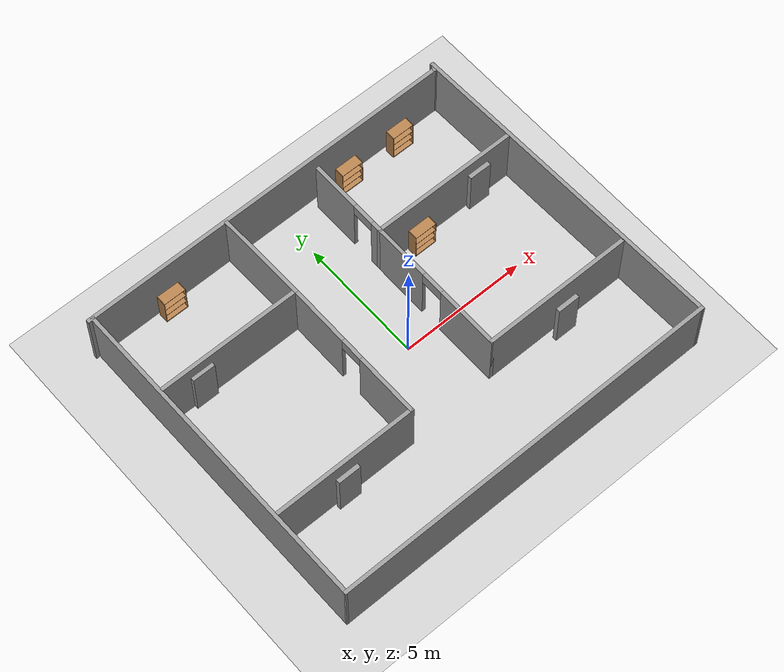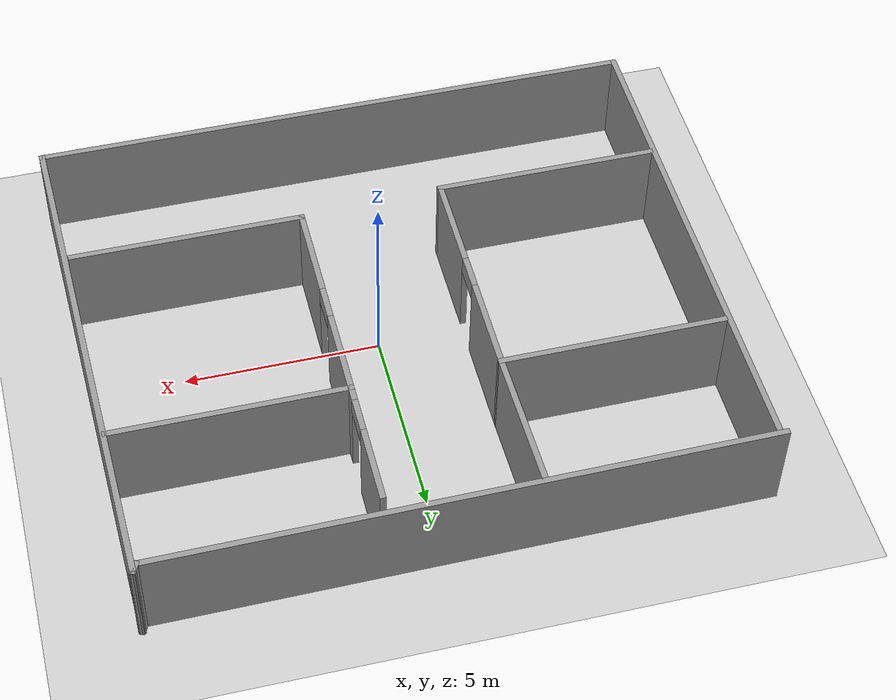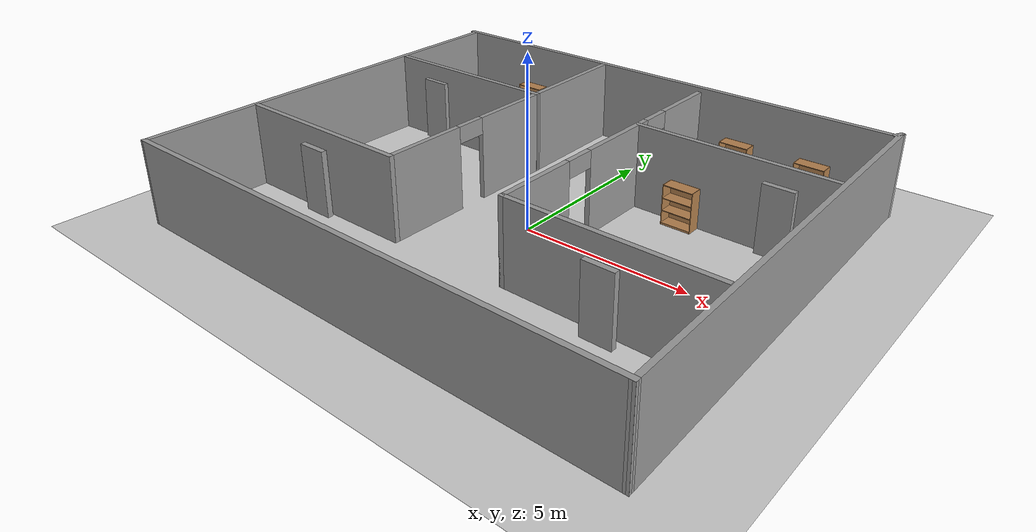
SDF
<sdf version="1.7">
 <world name="default">
  <light name="sun" type="directional">
   <pose>0 0 10 0 -0 0</pose>
   <diffuse>0.8 0.8 0.8 1</diffuse>
   <specular>0.2 0.2 0.2 1</specular>
   <attenuation>
    <range>1000</range>
    <constant>0.9</constant>
    <linear>0.01</linear>
    <quadratic>0.001</quadratic>
   </attenuation>
   <direction>-0.5 0.1 -0.9</direction>
   <spot><inner_angle>0</inner_angle><outer_angle>0</outer_angle><falloff>0</falloff></spot>
  </light>
  <model name="ground_plane">
   <static>1</static>
   <link name="link">
    <collision name="collision">
     <geometry><plane><normal>0 0 1</normal><size>100 100</size></plane></geometry>
     <surface><friction><ode><mu>100</mu><mu2>50</mu2></ode></friction></surface>
    </collision>
    <visual name="visual">
     <cast_shadows>0</cast_shadows>
     <geometry><plane><normal>0 0 1</normal><size>100 100</size></plane></geometry>
     <material>
      <script><uri>file://media/materials/scripts/gazebo.material</uri><name>Gazebo/Grey</name></script>
     </material>
    </visual>
   </link>
  </model>
  <gravity>0 0 -9.8</gravity>
  <magnetic_field>6e-06 2.3e-05 -4.2e-05</magnetic_field>
  <atmosphere type="adiabatic"/>
  <physics type="ode">
   <max_step_size>0.001</max_step_size>
   <real_time_factor>1</real_time_factor>
   <real_time_update_rate>1000</real_time_update_rate>
  </physics>
  <scene><ambient>0.4 0.4 0.4 1</ambient><background>0.7 0.7 0.7 1</background><shadows>1</shadows></scene>
  <audio><device>default</device></audio>
  <spherical_coordinates>
   <surface_model>EARTH_WGS84</surface_model>
   <latitude_deg>0</latitude_deg>
   <longitude_deg>0</longitude_deg>
   <elevation>0</elevation>
   <heading_deg>0</heading_deg>
  </spherical_coordinates>
  <model name="floorplan">
   <pose>-0.333032 0.400109 0 0 -0 0</pose>
   <link name="Door_0">
    <collision name="Door_0_Collision">
     <geometry><box><size>0.9 0.17 2</size></box></geometry>
     <pose>0 0 1 0 -0 0</pose>
    </collision>
    <visual name="Door_0_Visual">
     <pose>0 0 1 0 -0 0</pose>
     <geometry><box><size>0.9 0.17 2</size></box></geometry>
     <material>
      <script><uri>file://media/materials/scripts/gazebo.material</uri><name>Gazebo/Grey</name></script>
     </material>
    </visual>
    <pose>-6.03476 2.57586 0 0 -0 0</pose>
   </link>
   <link name="Door_1">
    <collision name="Door_1_Collision">
     <geometry><box><size>0.9 0.17 2</size></box></geometry>
     <pose>0 0 1 0 -0 0</pose>
    </collision>
    <visual name="Door_1_Visual">
     <pose>0 0 1 0 -0 0</pose>
     <geometry><box><size>0.9 0.17 2</size></box></geometry>
     <material>
      <script><uri>file://media/materials/scripts/gazebo.material</uri><name>Gazebo/Grey</name></script>
     </material>
    </visual>
    <pose>-4.8035 -3.36935 0 0 -0 0</pose>
   </link>
   <link name="Door_4">
    <collision name="Door_4_Collision">
     <geometry><box><size>0.9 0.17 2</size></box></geometry>
     <pose>0 0 1 0 -0 0</pose>
    </collision>
    <visual name="Door_4_Visual">
     <pose>0 0 1 0 -0 0</pose>
     <geometry><box><size>0.9 0.17 2</size></box></geometry>
     <material>
      <script><uri>file://media/materials/scripts/gazebo.material</uri><name>Gazebo/Grey</name></script>
     </material>
    </visual>
    <pose>4.8003 -3.36935 0 0 -0 0</pose>
   </link>
   <link name="Door_5">
    <collision name="Door_5_Collision">
     <geometry><box><size>0.9 0.17 2</size></box></geometry>
     <pose>0 0 1 0 -0 0</pose>
    </collision>
    <visual name="Door_5_Visual">
     <pose>0 0 1 0 -0 0</pose>
     <geometry><box><size>0.9 0.17 2</size></box></geometry>
     <material>
      <script><uri>file://media/materials/scripts/gazebo.material</uri><name>Gazebo/Grey</name></script>
     </material>
    </visual>
    <pose>6.06673 2.47032 0 0 -0 0</pose>
   </link>
   <link name="Wall_0">
    <collision name="Wall_0_Collision">
     <geometry><box><size>12.9907 0.15 2.5</size></box></geometry>
     <pose>0 0 1.25 0 -0 0</pose>
    </collision>
    <visual name="Wall_0_Visual">
     <pose>0 0 1.25 0 -0 0</pose>
     <geometry><box><size>12.9907 0.15 2.5</size></box></geometry>
     <material>
      <script><uri>file://media/materials/scripts/gazebo.material</uri><name>Gazebo/Grey</name></script>
      <ambient>1 1 1 1</ambient>
     </material>
     <meta><layer>0</layer></meta>
    </visual>
    <pose>-7.6538 -0.174859 0 0 -0 -1.56717</pose>
   </link>
   <link name="Wall_1">
    <collision name="Wall_1_Collision">
     <geometry><box><size>15.5959 0.15 2.5</size></box></geometry>
     <pose>0 0 1.25 0 -0 0</pose>
    </collision>
    <visual name="Wall_1_Visual">
     <pose>0 0 1.25 0 -0 0</pose>
     <geometry><box><size>15.5959 0.15 2.5</size></box></geometry>
     <material>
      <script><uri>file://media/materials/scripts/gazebo.material</uri><name>Gazebo/Grey</name></script>
      <ambient>1 1 1 1</ambient>
     </material>
     <meta><layer>0</layer></meta>
    </visual>
    <pose>0.092436 -6.59516 0 0 -0 0</pose>
   </link>
   <link name="Wall_10">
    <collision name="Wall_10_Collision">
     <geometry><box><size>3.68639 0.15 2.5</size></box></geometry>
     <pose>0 0 1.25 0 -0 0</pose>
    </collision>
    <visual name="Wall_10_Visual">
     <pose>0 0 1.25 0 -0 0</pose>
     <geometry><box><size>3.68639 0.15 2.5</size></box></geometry>
     <material>
      <script><uri>file://media/materials/scripts/gazebo.material</uri><name>Gazebo/Grey</name></script>
      <ambient>1 1 1 1</ambient>
     </material>
     <meta><layer>0</layer></meta>
    </visual>
    <pose>-1.96931 4.47753 0 0 -0 -1.5528</pose>
   </link>
   <link name="Wall_12">
    <pose>1.72077 1.44825 0 0 -0 -1.5708</pose>
    <visual name="Wall_12_Visual_0">
     <pose>-3.49613 0 1.25 0 -0 0</pose>
     <geometry><box><size>2.00774 0.15 2.5</size></box></geometry>
     <material>
      <script><uri>file://media/materials/scripts/gazebo.material</uri><name>Gazebo/Grey</name></script>
      <ambient>1 1 1 1</ambient>
     </material>
     <meta><layer>0</layer></meta>
    </visual>
    <collision name="Wall_12_Collision_0">
     <geometry><box><size>2.00774 0.15 2.5</size></box></geometry>
     <pose>-3.49613 0 1.25 0 -0 0</pose>
    </collision>
    <visual name="Wall_12_Visual_1">
     <pose>-0.265729 0 1.25 0 -0 0</pose>
     <geometry><box><size>2.65306 0.15 2.5</size></box></geometry>
     <material>
      <script><uri>file://media/materials/scripts/gazebo.material</uri><name>Gazebo/Grey</name></script>
      <ambient>1 1 1 1</ambient>
     </material>
     <meta><layer>0</layer></meta>
    </visual>
    <collision name="Wall_12_Collision_1">
     <geometry><box><size>2.65306 0.15 2.5</size></box></geometry>
     <pose>-0.265729 0 1.25 0 -0 0</pose>
    </collision>
    <visual name="Wall_12_Visual_2">
     <pose>3.2304 0 1.25 0 -0 0</pose>
     <geometry><box><size>2.5392 0.15 2.5</size></box></geometry>
     <material>
      <script><uri>file://media/materials/scripts/gazebo.material</uri><name>Gazebo/Grey</name></script>
      <ambient>1 1 1 1</ambient>
     </material>
     <meta><layer>0</layer></meta>
    </visual>
    <collision name="Wall_12_Collision_2">
     <geometry><box><size>2.5392 0.15 2.5</size></box></geometry>
     <pose>3.2304 0 1.25 0 -0 0</pose>
    </collision>
    <visual name="Wall_12_Visual_3">
     <pose>-2.04226 0 2.25 0 -0 0</pose>
     <geometry><box><size>0.9 0.15 0.5</size></box></geometry>
     <material>
      <script><uri>file://media/materials/scripts/gazebo.material</uri><name>Gazebo/Grey</name></script>
      <ambient>1 1 1 1</ambient>
     </material>
     <meta><layer>0</layer></meta>
    </visual>
    <collision name="Wall_12_Collision_3">
     <geometry><box><size>0.9 0.15 0.5</size></box></geometry>
     <pose>-2.04226 0 2.25 0 -0 0</pose>
    </collision>
    <visual name="Wall_12_Visual_4">
     <pose>1.5108 0 2.25 0 -0 0</pose>
     <geometry><box><size>0.9 0.15 0.5</size></box></geometry>
     <material>
      <script><uri>file://media/materials/scripts/gazebo.material</uri><name>Gazebo/Grey</name></script>
      <ambient>1 1 1 1</ambient>
     </material>
     <meta><layer>0</layer></meta>
    </visual>
    <collision name="Wall_12_Collision_4">
     <geometry><box><size>0.9 0.15 0.5</size></box></geometry>
     <pose>1.5108 0 2.25 0 -0 0</pose>
    </collision>
   </link>
   <link name="Wall_13">
    <collision name="Wall_13_Collision">
     <geometry><box><size>6 0.15 2.5</size></box></geometry>
     <pose>0 0 1.25 0 -0 0</pose>
    </collision>
    <visual name="Wall_13_Visual">
     <pose>0 0 1.25 0 -0 0</pose>
     <geometry><box><size>6 0.15 2.5</size></box></geometry>
     <material>
      <script><uri>file://media/materials/scripts/gazebo.material</uri><name>Gazebo/Grey</name></script>
      <ambient>1 1 1 1</ambient>
     </material>
     <meta><layer>0</layer></meta>
    </visual>
    <pose>4.64577 -2.97675 0 0 -0 0</pose>
   </link>
   <link name="Wall_15">
    <collision name="Wall_15_Collision">
     <geometry><box><size>6 0.15 2.5</size></box></geometry>
     <pose>0 0 1.25 0 -0 0</pose>
    </collision>
    <visual name="Wall_15_Visual">
     <pose>0 0 1.25 0 -0 0</pose>
     <geometry><box><size>6 0.15 2.5</size></box></geometry>
     <material>
      <script><uri>file://media/materials/scripts/gazebo.material</uri><name>Gazebo/Grey</name></script>
      <ambient>1 1 1 1</ambient>
     </material>
     <meta><layer>0</layer></meta>
    </visual>
    <pose>4.64577 2.6631 0 0 -0 0</pose>
   </link>
   <link name="Wall_2">
    <collision name="Wall_2_Collision">
     <geometry><box><size>13.3192 0.15 2.5</size></box></geometry>
     <pose>0 0 1.25 0 -0 0</pose>
    </collision>
    <visual name="Wall_2_Visual">
     <pose>0 0 1.25 0 -0 0</pose>
     <geometry><box><size>13.3192 0.15 2.5</size></box></geometry>
     <material>
      <script><uri>file://media/materials/scripts/gazebo.material</uri><name>Gazebo/Grey</name></script>
      <ambient>1 1 1 1</ambient>
     </material>
     <meta><layer>0</layer></meta>
    </visual>
    <pose>7.67583 -0.012025 0 0 -0 1.592</pose>
   </link>
   <link name="Wall_3">
    <collision name="Wall_3_Collision">
     <geometry><box><size>0.358061 0.15 2.5</size></box></geometry>
     <pose>0 0 1.25 0 -0 0</pose>
    </collision>
    <visual name="Wall_3_Visual">
     <pose>0 0 1.25 0 -0 0</pose>
     <geometry><box><size>0.358061 0.15 2.5</size></box></geometry>
     <material>
      <script><uri>file://media/materials/scripts/gazebo.material</uri><name>Gazebo/Grey</name></script>
      <ambient>1 1 1 1</ambient>
     </material>
     <meta><layer>0</layer></meta>
    </visual>
    <pose>7.48974 6.47806 0 0 -0 -2.03444</pose>
   </link>
   <link name="Wall_4">
    <collision name="Wall_4_Collision">
     <geometry><box><size>15.4099 0.15 2.5</size></box></geometry>
     <pose>0 0 1.25 0 -0 0</pose>
    </collision>
    <visual name="Wall_4_Visual">
     <pose>0 0 1.25 0 -0 0</pose>
     <geometry><box><size>15.4099 0.15 2.5</size></box></geometry>
     <material>
      <script><uri>file://media/materials/scripts/gazebo.material</uri><name>Gazebo/Grey</name></script>
      <ambient>1 1 1 1</ambient>
     </material>
     <meta><layer>0</layer></meta>
    </visual>
    <pose>-0.186707 6.33849 0 0 -0 -3.1355</pose>
   </link>
   <link name="Wall_6">
    <collision name="Wall_6_Collision">
     <geometry><box><size>5.75 0.15 2.5</size></box></geometry>
     <pose>0 0 1.25 0 -0 0</pose>
    </collision>
    <visual name="Wall_6_Visual">
     <pose>0 0 1.25 0 -0 0</pose>
     <geometry><box><size>5.75 0.15 2.5</size></box></geometry>
     <material>
      <script><uri>file://media/materials/scripts/gazebo.material</uri><name>Gazebo/Grey</name></script>
      <ambient>1 1 1 1</ambient>
     </material>
     <meta><layer>0</layer></meta>
    </visual>
    <pose>-4.73749 2.70962 0 0 -0 0</pose>
   </link>
   <link name="Wall_7">
    <pose>-1.93749 -0.215376 0 0 -0 -1.5708</pose>
    <visual name="Wall_7_Visual_0">
     <pose>-1.73106 0 1.25 0 -0 0</pose>
     <geometry><box><size>2.53789 0.15 2.5</size></box></geometry>
     <material>
      <script><uri>file://media/materials/scripts/gazebo.material</uri><name>Gazebo/Grey</name></script>
      <ambient>1 1 1 1</ambient>
     </material>
     <meta><layer>0</layer></meta>
    </visual>
    <collision name="Wall_7_Collision_0">
     <geometry><box><size>2.53789 0.15 2.5</size></box></geometry>
     <pose>-1.73106 0 1.25 0 -0 0</pose>
    </collision>
    <visual name="Wall_7_Visual_1">
     <pose>1.71894 0 1.25 0 -0 0</pose>
     <geometry><box><size>2.56211 0.15 2.5</size></box></geometry>
     <material>
      <script><uri>file://media/materials/scripts/gazebo.material</uri><name>Gazebo/Grey</name></script>
      <ambient>1 1 1 1</ambient>
     </material>
     <meta><layer>0</layer></meta>
    </visual>
    <collision name="Wall_7_Collision_1">
     <geometry><box><size>2.56211 0.15 2.5</size></box></geometry>
     <pose>1.71894 0 1.25 0 -0 0</pose>
    </collision>
    <visual name="Wall_7_Visual_2">
     <pose>-0.012113 0 2.25 0 -0 0</pose>
     <geometry><box><size>0.9 0.15 0.5</size></box></geometry>
     <material>
      <script><uri>file://media/materials/scripts/gazebo.material</uri><name>Gazebo/Grey</name></script>
      <ambient>1 1 1 1</ambient>
     </material>
     <meta><layer>0</layer></meta>
    </visual>
    <collision name="Wall_7_Collision_2">
     <geometry><box><size>0.9 0.15 0.5</size></box></geometry>
     <pose>-0.012113 0 2.25 0 -0 0</pose>
    </collision>
   </link>
   <link name="Wall_8">
    <collision name="Wall_8_Collision">
     <geometry><box><size>5.75 0.15 2.5</size></box></geometry>
     <pose>0 0 1.25 0 -0 0</pose>
    </collision>
    <visual name="Wall_8_Visual">
     <pose>0 0 1.25 0 -0 0</pose>
     <geometry><box><size>5.75 0.15 2.5</size></box></geometry>
     <material>
      <script><uri>file://media/materials/scripts/gazebo.material</uri><name>Gazebo/Grey</name></script>
      <ambient>1 1 1 1</ambient>
     </material>
     <meta><layer>0</layer></meta>
    </visual>
    <pose>-4.73749 -3.14038 0 0 -0 3.14159</pose>
   </link>
   <static>1</static>
  </model>
  <model name="bookshelf">
   <static>1</static>
   <link name="link">
    <inertial><mass>1</mass></inertial>
    <collision name="back">
     <pose>0 0.005 0.6 0 -0 0</pose>
     <geometry><box><size>0.9 0.01 1.2</size></box></geometry>
    </collision>
    <visual name="visual1">
     <pose>0 0.005 0.6 0 -0 0</pose>
     <geometry><box><size>0.9 0.01 1.2</size></box></geometry>
     <material>
      <script><uri>file://media/materials/scripts/gazebo.material</uri><name>Gazebo/Wood</name></script>
     </material>
    </visual>
    <collision name="left_side">
     <pose>0.45 -0.195 0.6 0 -0 0</pose>
     <geometry><box><size>0.02 0.4 1.2</size></box></geometry>
    </collision>
    <visual name="visual2">
     <pose>0.45 -0.195 0.6 0 -0 0</pose>
     <geometry><box><size>0.02 0.4 1.2</size></box></geometry>
     <material>
      <script><uri>file://media/materials/scripts/gazebo.material</uri><name>Gazebo/Wood</name></script>
     </material>
    </visual>
    <collision name="right_side">
     <pose>-0.45 -0.195 0.6 0 -0 0</pose>
     <geometry><box><size>0.02 0.4 1.2</size></box></geometry>
    </collision>
    <visual name="visual3">
     <pose>-0.45 -0.195 0.6 0 -0 0</pose>
     <geometry><box><size>0.02 0.4 1.2</size></box></geometry>
     <material>
      <script><uri>file://media/materials/scripts/gazebo.material</uri><name>Gazebo/Wood</name></script>
     </material>
    </visual>
    <collision name="bottom">
     <pose>0 -0.195 0.03 0 -0 0</pose>
     <geometry><box><size>0.88 0.4 0.06</size></box></geometry>
    </collision>
    <visual name="visual4">
     <pose>0 -0.195 0.03 0 -0 0</pose>
     <geometry><box><size>0.88 0.4 0.06</size></box></geometry>
     <material>
      <script><uri>file://media/materials/scripts/gazebo.material</uri><name>Gazebo/Wood</name></script>
     </material>
    </visual>
    <collision name="top">
     <pose>0 -0.195 1.19 0 -0 0</pose>
     <geometry><box><size>0.88 0.4 0.02</size></box></geometry>
    </collision>
    <visual name="visual5">
     <pose>0 -0.195 1.19 0 -0 0</pose>
     <geometry><box><size>0.88 0.4 0.02</size></box></geometry>
     <material>
      <script><uri>file://media/materials/scripts/gazebo.material</uri><name>Gazebo/Wood</name></script>
     </material>
    </visual>
    <collision name="low_shelf">
     <pose>0 -0.195 0.43 0 -0 0</pose>
     <geometry><box><size>0.88 0.4 0.02</size></box></geometry>
    </collision>
    <visual name="visual6">
     <pose>0 -0.195 0.43 0 -0 0</pose>
     <geometry><box><size>0.88 0.4 0.02</size></box></geometry>
     <material>
      <script><uri>file://media/materials/scripts/gazebo.material</uri><name>Gazebo/Wood</name></script>
     </material>
    </visual>
    <collision name="high_shelf">
     <pose>0 -0.195 0.8 0 -0 0</pose>
     <geometry><box><size>0.88 0.4 0.02</size></box></geometry>
    </collision>
    <visual name="visual7">
     <pose>0 -0.195 0.8 0 -0 0</pose>
     <geometry><box><size>0.88 0.4 0.02</size></box></geometry>
     <material>
      <script><uri>file://media/materials/scripts/gazebo.material</uri><name>Gazebo/Wood</name></script>
     </material>
    </visual>
   </link>
   <pose>5.12939 6.55054 0 0 -0 0</pose>
  </model>
  <model name="bookshelf_0">
   <static>1</static>
   <link name="link">
    <inertial><mass>1</mass></inertial>
    <collision name="back">
     <pose>0 0.005 0.6 0 -0 0</pose>
     <geometry><box><size>0.9 0.01 1.2</size></box></geometry>
    </collision>
    <visual name="visual1">
     <pose>0 0.005 0.6 0 -0 0</pose>
     <geometry><box><size>0.9 0.01 1.2</size></box></geometry>
     <material>
      <script><uri>file://media/materials/scripts/gazebo.material</uri><name>Gazebo/Wood</name></script>
     </material>
    </visual>
    <collision name="left_side">
     <pose>0.45 -0.195 0.6 0 -0 0</pose>
     <geometry><box><size>0.02 0.4 1.2</size></box></geometry>
    </collision>
    <visual name="visual2">
     <pose>0.45 -0.195 0.6 0 -0 0</pose>
     <geometry><box><size>0.02 0.4 1.2</size></box></geometry>
     <material>
      <script><uri>file://media/materials/scripts/gazebo.material</uri><name>Gazebo/Wood</name></script>
     </material>
    </visual>
    <collision name="right_side">
     <pose>-0.45 -0.195 0.6 0 -0 0</pose>
     <geometry><box><size>0.02 0.4 1.2</size></box></geometry>
    </collision>
    <visual name="visual3">
     <pose>-0.45 -0.195 0.6 0 -0 0</pose>
     <geometry><box><size>0.02 0.4 1.2</size></box></geometry>
     <material>
      <script><uri>file://media/materials/scripts/gazebo.material</uri><name>Gazebo/Wood</name></script>
     </material>
    </visual>
    <collision name="bottom">
     <pose>0 -0.195 0.03 0 -0 0</pose>
     <geometry><box><size>0.88 0.4 0.06</size></box></geometry>
    </collision>
    <visual name="visual4">
     <pose>0 -0.195 0.03 0 -0 0</pose>
     <geometry><box><size>0.88 0.4 0.06</size></box></geometry>
     <material>
      <script><uri>file://media/materials/scripts/gazebo.material</uri><name>Gazebo/Wood</name></script>
     </material>
    </visual>
    <collision name="top">
     <pose>0 -0.195 1.19 0 -0 0</pose>
     <geometry><box><size>0.88 0.4 0.02</size></box></geometry>
    </collision>
    <visual name="visual5">
     <pose>0 -0.195 1.19 0 -0 0</pose>
     <geometry><box><size>0.88 0.4 0.02</size></box></geometry>
     <material>
      <script><uri>file://media/materials/scripts/gazebo.material</uri><name>Gazebo/Wood</name></script>
     </material>
    </visual>
    <collision name="low_shelf">
     <pose>0 -0.195 0.43 0 -0 0</pose>
     <geometry><box><size>0.88 0.4 0.02</size></box></geometry>
    </collision>
    <visual name="visual6">
     <pose>0 -0.195 0.43 0 -0 0</pose>
     <geometry><box><size>0.88 0.4 0.02</size></box></geometry>
     <material>
      <script><uri>file://media/materials/scripts/gazebo.material</uri><name>Gazebo/Wood</name></script>
     </material>
    </visual>
    <collision name="high_shelf">
     <pose>0 -0.195 0.8 0 -0 0</pose>
     <geometry><box><size>0.88 0.4 0.02</size></box></geometry>
    </collision>
    <visual name="visual7">
     <pose>0 -0.195 0.8 0 -0 0</pose>
     <geometry><box><size>0.88 0.4 0.02</size></box></geometry>
     <material>
      <script><uri>file://media/materials/scripts/gazebo.material</uri><name>Gazebo/Wood</name></script>
     </material>
    </visual>
   </link>
   <pose>2.77051 6.53352 0 0 -0 0</pose>
  </model>
  <model name="bookshelf_1">
   <static>1</static>
   <link name="link">
    <inertial><mass>1</mass></inertial>
    <collision name="back">
     <pose>0 0.005 0.6 0 -0 0</pose>
     <geometry><box><size>0.9 0.01 1.2</size></box></geometry>
    </collision>
    <visual name="visual1">
     <pose>0 0.005 0.6 0 -0 0</pose>
     <geometry><box><size>0.9 0.01 1.2</size></box></geometry>
     <material>
      <script><uri>file://media/materials/scripts/gazebo.material</uri><name>Gazebo/Wood</name></script>
     </material>
    </visual>
    <collision name="left_side">
     <pose>0.45 -0.195 0.6 0 -0 0</pose>
     <geometry><box><size>0.02 0.4 1.2</size></box></geometry>
    </collision>
    <visual name="visual2">
     <pose>0.45 -0.195 0.6 0 -0 0</pose>
     <geometry><box><size>0.02 0.4 1.2</size></box></geometry>
     <material>
      <script><uri>file://media/materials/scripts/gazebo.material</uri><name>Gazebo/Wood</name></script>
     </material>
    </visual>
    <collision name="right_side">
     <pose>-0.45 -0.195 0.6 0 -0 0</pose>
     <geometry><box><size>0.02 0.4 1.2</size></box></geometry>
    </collision>
    <visual name="visual3">
     <pose>-0.45 -0.195 0.6 0 -0 0</pose>
     <geometry><box><size>0.02 0.4 1.2</size></box></geometry>
     <material>
      <script><uri>file://media/materials/scripts/gazebo.material</uri><name>Gazebo/Wood</name></script>
     </material>
    </visual>
    <collision name="bottom">
     <pose>0 -0.195 0.03 0 -0 0</pose>
     <geometry><box><size>0.88 0.4 0.06</size></box></geometry>
    </collision>
    <visual name="visual4">
     <pose>0 -0.195 0.03 0 -0 0</pose>
     <geometry><box><size>0.88 0.4 0.06</size></box></geometry>
     <material>
      <script><uri>file://media/materials/scripts/gazebo.material</uri><name>Gazebo/Wood</name></script>
     </material>
    </visual>
    <collision name="top">
     <pose>0 -0.195 1.19 0 -0 0</pose>
     <geometry><box><size>0.88 0.4 0.02</size></box></geometry>
    </collision>
    <visual name="visual5">
     <pose>0 -0.195 1.19 0 -0 0</pose>
     <geometry><box><size>0.88 0.4 0.02</size></box></geometry>
     <material>
      <script><uri>file://media/materials/scripts/gazebo.material</uri><name>Gazebo/Wood</name></script>
     </material>
    </visual>
    <collision name="low_shelf">
     <pose>0 -0.195 0.43 0 -0 0</pose>
     <geometry><box><size>0.88 0.4 0.02</size></box></geometry>
    </collision>
    <visual name="visual6">
     <pose>0 -0.195 0.43 0 -0 0</pose>
     <geometry><box><size>0.88 0.4 0.02</size></box></geometry>
     <material>
      <script><uri>file://media/materials/scripts/gazebo.material</uri><name>Gazebo/Wood</name></script>
     </material>
    </visual>
    <collision name="high_shelf">
     <pose>0 -0.195 0.8 0 -0 0</pose>
     <geometry><box><size>0.88 0.4 0.02</size></box></geometry>
    </collision>
    <visual name="visual7">
     <pose>0 -0.195 0.8 0 -0 0</pose>
     <geometry><box><size>0.88 0.4 0.02</size></box></geometry>
     <material>
      <script><uri>file://media/materials/scripts/gazebo.material</uri><name>Gazebo/Wood</name></script>
     </material>
    </visual>
   </link>
   <pose>-5.09 6.56432 0 0 -0 0</pose>
  </model>
  <model name="bookshelf_2">
   <static>1</static>
   <link name="link">
    <inertial><mass>1</mass></inertial>
    <collision name="back">
     <pose>0 0.005 0.6 0 -0 0</pose>
     <geometry><box><size>0.9 0.01 1.2</size></box></geometry>
    </collision>
    <visual name="visual1">
     <pose>0 0.005 0.6 0 -0 0</pose>
     <geometry><box><size>0.9 0.01 1.2</size></box></geometry>
     <material>
      <script><uri>file://media/materials/scripts/gazebo.material</uri><name>Gazebo/Wood</name></script>
     </material>
    </visual>
    <collision name="left_side">
     <pose>0.45 -0.195 0.6 0 -0 0</pose>
     <geometry><box><size>0.02 0.4 1.2</size></box></geometry>
    </collision>
    <visual name="visual2">
     <pose>0.45 -0.195 0.6 0 -0 0</pose>
     <geometry><box><size>0.02 0.4 1.2</size></box></geometry>
     <material>
      <script><uri>file://media/materials/scripts/gazebo.material</uri><name>Gazebo/Wood</name></script>
     </material>
    </visual>
    <collision name="right_side">
     <pose>-0.45 -0.195 0.6 0 -0 0</pose>
     <geometry><box><size>0.02 0.4 1.2</size></box></geometry>
    </collision>
    <visual name="visual3">
     <pose>-0.45 -0.195 0.6 0 -0 0</pose>
     <geometry><box><size>0.02 0.4 1.2</size></box></geometry>
     <material>
      <script><uri>file://media/materials/scripts/gazebo.material</uri><name>Gazebo/Wood</name></script>
     </material>
    </visual>
    <collision name="bottom">
     <pose>0 -0.195 0.03 0 -0 0</pose>
     <geometry><box><size>0.88 0.4 0.06</size></box></geometry>
    </collision>
    <visual name="visual4">
     <pose>0 -0.195 0.03 0 -0 0</pose>
     <geometry><box><size>0.88 0.4 0.06</size></box></geometry>
     <material>
      <script><uri>file://media/materials/scripts/gazebo.material</uri><name>Gazebo/Wood</name></script>
     </material>
    </visual>
    <collision name="top">
     <pose>0 -0.195 1.19 0 -0 0</pose>
     <geometry><box><size>0.88 0.4 0.02</size></box></geometry>
    </collision>
    <visual name="visual5">
     <pose>0 -0.195 1.19 0 -0 0</pose>
     <geometry><box><size>0.88 0.4 0.02</size></box></geometry>
     <material>
      <script><uri>file://media/materials/scripts/gazebo.material</uri><name>Gazebo/Wood</name></script>
     </material>
    </visual>
    <collision name="low_shelf">
     <pose>0 -0.195 0.43 0 -0 0</pose>
     <geometry><box><size>0.88 0.4 0.02</size></box></geometry>
    </collision>
    <visual name="visual6">
     <pose>0 -0.195 0.43 0 -0 0</pose>
     <geometry><box><size>0.88 0.4 0.02</size></box></geometry>
     <material>
      <script><uri>file://media/materials/scripts/gazebo.material</uri><name>Gazebo/Wood</name></script>
     </material>
    </visual>
    <collision name="high_shelf">
     <pose>0 -0.195 0.8 0 -0 0</pose>
     <geometry><box><size>0.88 0.4 0.02</size></box></geometry>
    </collision>
    <visual name="visual7">
     <pose>0 -0.195 0.8 0 -0 0</pose>
     <geometry><box><size>0.88 0.4 0.02</size></box></geometry>
     <material>
      <script><uri>file://media/materials/scripts/gazebo.material</uri><name>Gazebo/Wood</name></script>
     </material>
    </visual>
   </link>
   <pose>3.05136 2.96564 0 0 -0 0</pose>
  </model>
 </world>
</sdf>
